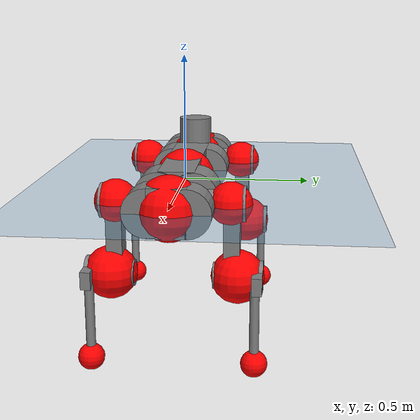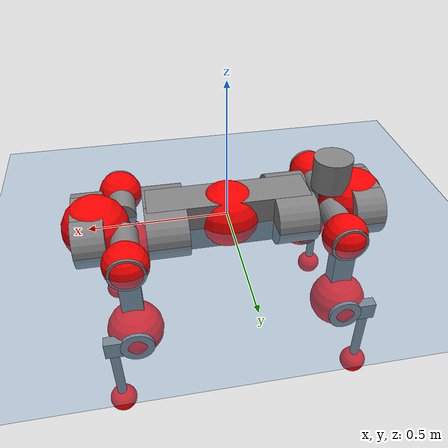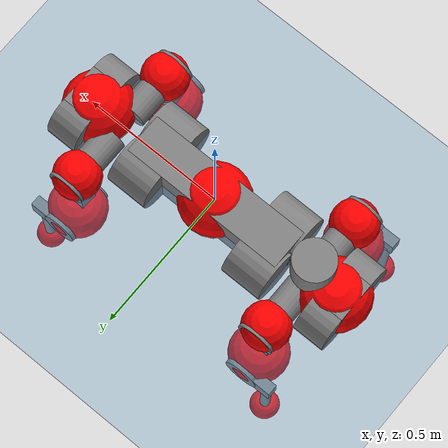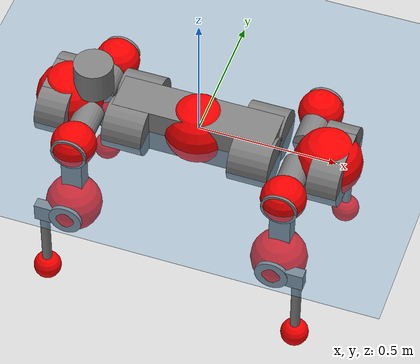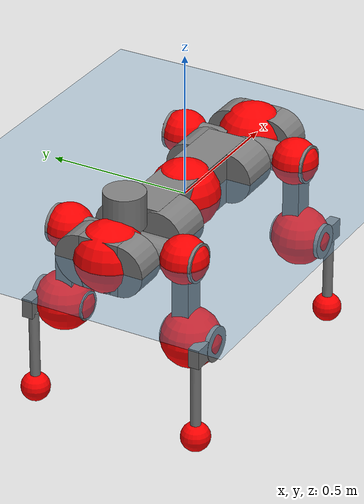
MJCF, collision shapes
<mujoco model="anymal_c">
  <compiler angle="radian" assetdir="assets" balanceinertia="true" inertiafromgeom="false"/>

  <option timestep="0.005" density="1.2" viscosity="2e-05"/>

  <size nkey="1"/>

  <visual>
    <quality shadowsize="8192"/>
    <map shadowclip="0.5"/>
  </visual>

  <default>
    <default class="/">
      <material specular="0" shininess="0.25"/>
      <geom contype="0" conaffinity="0" group="1" solref="-1000 -80"/>
      <site size="0.01 0.005 0.005" group="5"/>
      <general forcelimited="true" forcerange="-80 80" biastype="affine" gainprm="80" biasprm="0 -80 -2"/>
      <default class="anymal_c">
        <joint armature="0.01" damping="0.01" frictionloss="0.1"/>
        <default class="visual">
          <geom type="mesh" group="2"/>
          <default class="visual_zflip"/>
        </default>
        <default class="collision">
          <geom type="cylinder" group="3"/>
          <default class="foot">
            <geom size="0.03 0 0" type="sphere" condim="6" priority="1" friction="0.8 0.02 0.01" solimp="0.015 1 0.03"/>
          </default>
        </default>
      </default>
      <default class="reward_collision_sphere">
        <geom group="5" rgba="1 0 0 1"/>
      </default>
    </default>
  </default>

  <asset>
    <texture type="skybox" colorspace="auto" name="//unnamed_texture_0" builtin="gradient" rgb1="0.95 0.95 0.95" rgb2="0.95 0.95 0.95" width="100" height="600"/>
    <texture type="2d" colorspace="auto" name="texplane" builtin="checker" rgb1="0.345 0.575 0.748" rgb2="0.345 0.575 0.748" markrgb="1 1 1" width="512" height="512"/>
    <texture type="2d" colorspace="linear" name="base" file="base.png"/>
    <texture type="2d" colorspace="linear" name="top_shell" file="top_shell.png"/>
    <texture type="2d" colorspace="linear" name="bottom_shell" file="bottom_shell.png"/>
    <texture type="2d" colorspace="linear" name="remote" file="remote.png"/>
    <texture type="2d" colorspace="linear" name="hatch" file="hatch.png"/>
    <texture type="2d" colorspace="linear" name="handle" file="handle.png"/>
    <texture type="2d" colorspace="linear" name="face" file="face.png"/>
    <texture type="2d" colorspace="linear" name="battery" file="battery.png"/>
    <texture type="2d" colorspace="linear" name="lidar_cage" file="lidar_cage.png"/>
    <texture type="2d" colorspace="linear" name="depth_camera" file="depth_camera.png"/>
    <texture type="2d" colorspace="linear" name="wide_angle_camera" file="wide_angle_camera.png"/>
    <texture type="2d" colorspace="linear" name="lidar" file="lidar.png"/>
    <texture type="2d" colorspace="linear" name="drive" file="drive.png"/>
    <texture type="2d" colorspace="linear" name="hip_l" file="hip_l.png"/>
    <texture type="2d" colorspace="linear" name="shank_l" file="shank_l.png"/>
    <texture type="2d" colorspace="linear" name="foot" file="foot.png"/>
    <texture type="2d" colorspace="linear" name="thigh" file="thigh.png"/>
    <texture type="2d" colorspace="linear" name="shank_r" file="shank_r.png"/>
    <texture type="2d" colorspace="linear" name="hip_r" file="hip_r.png"/>
    <material name="MatPlane" class="/" texture="texplane" texuniform="true" texrepeat="2 2" specular="0.9" shininess="0.5"/>
    <material name="black_plastic" class="/" rgba="0.007 0.007 0.007 1"/>
    <material name="green" class="/" rgba="0.052 0.178 0.033 1"/>
    <material name="red" class="/" rgba="0.178 0.006 0.005 1"/>
    <material name="yellow" class="/" rgba="0.178 0.119 0.006 1"/>
    <material name="lwl" class="/" rgba="0.8 0.8 0.8 1"/>
    <material name="base" class="/" texture="base"/>
    <material name="top_shell" class="/" texture="top_shell"/>
    <material name="bottom_shell" class="/" texture="bottom_shell"/>
    <material name="hip_l" class="/" texture="hip_l"/>
    <material name="thigh" class="/" texture="thigh"/>
    <material name="shank_l" class="/" texture="shank_l"/>
    <material name="foot" class="/" texture="foot"/>
    <material name="hip_r" class="/" texture="hip_r"/>
    <material name="shank" class="/" texture="shank_r"/>
    <material name="hatch" class="/" texture="hatch"/>
    <material name="remote" class="/" texture="remote"/>
    <material name="handle" class="/" texture="handle"/>
    <material name="face" class="/" texture="face"/>
    <material name="depth_camera" class="/" texture="depth_camera"/>
    <material name="wide_angle_camera" class="/" texture="wide_angle_camera"/>
    <material name="battery" class="/" texture="battery"/>
    <material name="lidar_cage" class="/" texture="lidar_cage"/>
    <material name="lidar" class="/" texture="lidar"/>
    <material name="drive" class="/" texture="drive"/>
    <mesh name="base_0" class="/" file="base_0.obj"/>
    <mesh name="base_1" class="/" file="base_1.obj"/>
    <mesh name="base_2" class="/" file="base_2.obj"/>
    <mesh name="base_3" class="/" file="base_3.obj"/>
    <mesh name="base_4" class="/" file="base_4.obj"/>
    <mesh name="base_5" class="/" file="base_5.obj"/>
    <mesh name="top_shell" class="/" file="top_shell.obj"/>
    <mesh name="bottom_shell" class="/" file="bottom_shell.obj"/>
    <mesh name="remote" class="/" file="remote.obj"/>
    <mesh name="handle" class="/" file="handle.obj"/>
    <mesh name="face" class="/" file="face.obj"/>
    <mesh name="wide_angle_camera" class="/" file="wide_angle_camera.obj"/>
    <mesh name="depth_camera" class="/" file="depth_camera.obj"/>
    <mesh name="battery" class="/" file="battery.obj"/>
    <mesh name="lidar_cage" class="/" file="lidar_cage.obj"/>
    <mesh name="lidar" class="/" file="lidar.obj"/>
    <mesh name="drive" class="/" file="drive.obj"/>
    <mesh name="hip_l" class="/" file="hip_l.obj"/>
    <mesh name="thigh" class="/" file="thigh.obj"/>
    <mesh name="shank_l" class="/" file="shank_l.obj"/>
    <mesh name="foot" class="/" file="foot.obj"/>
    <mesh name="hip_r" class="/" file="hip_r.obj"/>
    <mesh name="hatch" class="/" file="hatch.obj"/>
    <mesh name="shank_r" class="/" file="shank_r.obj"/>
  </asset>

  <worldbody>
    <geom name="floor" class="/" size="100 100 0.125" type="plane" group="0" material="MatPlane"/>
    <light name="toplight_shadow" class="/" pos="0 0 5" dir="0.0990148 0.0990148 -0.990148" type="directional" ambient="0.04 0.04 0.04" diffuse="0.55 0.55 0.55" specular="0.12 0.12 0.12"/>
    <light name="toplight_fill" class="/" pos="0 0 5" dir="0.0990148 0.0990148 -0.990148" type="directional" castshadow="false" ambient="0.04 0.04 0.04" diffuse="0.3 0.3 0.3" specular="0.08 0.08 0.08"/>
    <body name="trunk" childclass="anymal_c" pos="-0.00219819 -0.000468103 0.00103017" quat="1 0.000161311 0.000594138 9.20861e-05">
      <inertial pos="8.34475e-05 -0.00056878 0.0477586" quat="0.497407 0.499794 0.498667 0.504106" mass="19.3645" diaginertia="0.843227 0.59256 0.199593"/>
      <joint name="//unnamed_joint_0" type="free" armature="0" damping="0" frictionloss="0"/>
      <geom name="//unnamed_geom_1" class="visual" material="green" mesh="base_0"/>
      <geom name="//unnamed_geom_2" class="visual" material="yellow" mesh="base_1"/>
      <geom name="//unnamed_geom_3" class="visual" material="red" mesh="base_2"/>
      <geom name="//unnamed_geom_4" class="visual" material="black_plastic" mesh="base_3"/>
      <geom name="//unnamed_geom_5" class="visual" material="lwl" mesh="base_4"/>
      <geom name="//unnamed_geom_6" class="visual" material="base" mesh="base_5"/>
      <geom name="trunk_1" class="collision" size="0.292321 0.0705602 0.0907203" type="box"/>
      <geom name="trunk_2" class="collision" size="0.0907203 0.0730802" pos="0.229516 0.0692398 0" quat="0.707107 0 0.707107 0"/>
      <geom name="trunk_3" class="collision" size="0.0907203 0.0730802" pos="-0.229516 0.0692398 0" quat="0.707107 0 0.707107 0"/>
      <geom name="trunk_4" class="collision" size="0.0907203 0.0730802" pos="0.229516 -0.0692398 0" quat="0.707107 0 0.707107 0"/>
      <geom name="trunk_5" class="collision" size="0.0907203 0.0730802" pos="-0.229516 -0.0692398 0" quat="0.707107 0 0.707107 0"/>
      <geom name="//unnamed_geom_12" class="visual" material="top_shell" mesh="top_shell"/>
      <geom name="//unnamed_geom_13" class="visual" material="bottom_shell" mesh="bottom_shell"/>
      <geom name="//unnamed_geom_14" class="visual" material="remote" mesh="remote"/>
      <geom name="//unnamed_geom_15" class="visual" material="handle" mesh="handle"/>
      <geom name="//unnamed_geom_16" class="visual" pos="0.437399 0 0" quat="1 0 0 0" material="face" mesh="face"/>
      <geom name="trunk_6" class="collision" size="0.0554402 0.0705602 0.0907203" pos="0.495438 0 0" type="box"/>
      <geom name="//unnamed_geom_18" class="collision" size="0.0907203 0.0554402" pos="0.495438 0.0692398 0" quat="0.707107 0 0.707107 0"/>
      <geom name="//unnamed_geom_19" class="collision" size="0.0907203 0.0554402" pos="0.495438 -0.0692398 0" quat="0.707107 0 0.707107 0"/>
      <geom name="//unnamed_geom_20" class="visual" pos="0.487151 0 -0.0280303" quat="0.965926 0 0.258819 0" material="depth_camera" mesh="depth_camera"/>
      <geom name="//unnamed_geom_21" class="visual" pos="0.541341 0 0.014665" material="wide_angle_camera" mesh="wide_angle_camera"/>
      <geom name="//unnamed_geom_22" class="visual_zflip" pos="-0.437399 0 0" quat="0 0 0 1" material="face" mesh="face"/>
      <geom name="trunk_7" class="collision" size="0.0554402 0.0705602 0.0907203" pos="-0.495438 0 0" quat="0 0 0 1" type="box"/>
      <geom name="//unnamed_geom_24" class="collision" size="0.0907203 0.0554402" pos="-0.495438 -0.0692398 0" quat="0 -0.707107 0 0.707107"/>
      <geom name="//unnamed_geom_25" class="collision" size="0.0907203 0.0554402" pos="-0.495438 0.0692398 0" quat="0 -0.707107 0 0.707107"/>
      <geom name="//unnamed_geom_26" class="visual" pos="-0.487151 0 -0.0280303" quat="0 -0.258819 0 0.965926" material="depth_camera" mesh="depth_camera"/>
      <geom name="//unnamed_geom_27" class="visual_zflip" pos="-0.541341 0 0.014665" quat="0 0 0 1" material="wide_angle_camera" mesh="wide_angle_camera"/>
      <geom name="//unnamed_geom_28" class="visual" material="battery" mesh="battery"/>
      <geom name="//unnamed_geom_29" class="visual" pos="0 0.0747591 0.0290328" quat="0.683013 -0.183013 0.183013 0.683013" material="depth_camera" mesh="depth_camera"/>
      <geom name="//unnamed_geom_30" class="visual" pos="0 -0.0747591 0.0290328" quat="0.683013 0.183013 0.183013 -0.683013" material="depth_camera" mesh="depth_camera"/>
      <geom name="//unnamed_geom_31" class="visual" pos="-0.384109 0 0.0720023" quat="1 0 0 0" material="lidar_cage" mesh="lidar_cage"/>
      <geom name="trunk_8" class="collision" size="0.0705602 0.0604802" pos="-0.384109 0 0.13078"/>
      <geom name="//unnamed_geom_33" class="visual" pos="-0.384109 -2.59708e-05 0.139302" quat="0.707107 0 0 -0.707107" material="lidar" mesh="lidar"/>
      <geom name="//unnamed_geom_34" class="visual" pos="0.316468 0.102867 1.64169e-10" quat="0.258819 0.965926 0 0" material="drive" mesh="drive"/>
      <geom name="//unnamed_geom_35" class="visual" pos="0.316468 -0.102867 -1.64169e-10" quat="0.258819 -0.965926 0 0" material="drive" mesh="drive"/>
      <geom name="//unnamed_geom_36" class="visual" pos="-0.316468 0.102867 -1.64169e-10" quat="0 0 0.965926 -0.258819" material="drive" mesh="drive"/>
      <geom name="//unnamed_geom_37" class="visual" pos="-0.316468 -0.102867 1.64169e-10" quat="0 0 -0.965926 -0.258819" material="drive" mesh="drive"/>
      <geom name="//unnamed_geom_38" class="visual" pos="0.122408 0 0.0715125" quat="1 0 0 0" material="hatch" mesh="hatch"/>
      <geom name="//unnamed_geom_39" class="reward_collision_sphere" size="0.12096"/>
      <geom name="//unnamed_geom_40" class="reward_collision_sphere" size="0.12096" pos="0.47486 0 0"/>
      <geom name="//unnamed_geom_41" class="reward_collision_sphere" size="0.12096" pos="-0.47486 0 0"/>
      <site name="imu" pos="0.261675 0.00309547 0.049103" size="0.01008"/>
      <camera name="track" pos="0 -1.97828 0" quat="0.707107 0.707107 0 0" mode="trackcom"/>
      <camera name="ego_camera" pos="0.47486 0 -0.0391849" quat="-0.5 -0.5 0.5 0.5"/>
      <body name="LF_HIP" pos="0.317616 0.103577 -0.00103356" quat="0.258012 0.966142 0.000305991 -0.000588727">
        <inertial pos="0.0574828 -0.0141738 -0.00744052" quat="-0.12854 0.709898 -0.134054 0.679376" mass="2.89199" diaginertia="0.00780413 0.00463362 0.00301135"/>
        <joint name="LF_HAA" pos="0 0 0" axis="1 0.000113574 -4.40596e-05" range="-0.726731 0.456577" armature="0.0105654" damping="0.00893127" frictionloss="0.0957994"/>
        <geom name="//unnamed_geom_42" class="visual" pos="0 9.65734e-06 -1.58621e-06" quat="0.258819 -0.965926 0 0" material="hip_l" mesh="hip_l"/>
        <geom name="//unnamed_geom_43" class="visual" pos="0.0632092 -0.0757176 -0.0436452" quat="0.183013 -0.683013 0.683013 0.183013" material="drive" mesh="drive"/>
        <geom name="//unnamed_geom_44" class="collision" size="0.0504001 0.0705602" pos="0.0632092 -0.0118299 -0.0067643" quat="-0.353553 -0.612372 0.612372 -0.353553"/>
        <body name="LF_THIGH" pos="0.0634478 -0.072748 -0.04159" quat="0.182865 -0.683001 0.683049 0.183069">
          <inertial pos="0.0349386 0.000202729 -0.238789" quat="0.993031 -0.00439084 -0.0802161 0.0862242" mass="3.16854" diaginertia="0.0392999 0.0280432 0.00382301"/>
          <joint name="LF_HFE" pos="0 0 0" axis="0.999998 -0.00046499 -0.00216485" stiffness="0.013284" range="-3.17117 3.15545" armature="0.0104924" damping="0" frictionloss="0.097111"/>
          <geom name="//unnamed_geom_45" class="visual" pos="0.00131523 2.07249e-06 0" quat="0.707107 0 0 -0.707107" material="thigh" mesh="thigh"/>
          <geom name="//unnamed_geom_46" class="collision" size="0.0655202 0.0403201" pos="0.0422098 0 0" quat="0.5 0.5 -0.5 -0.5"/>
          <geom name="//unnamed_geom_47" class="collision" size="0.0378001 0.0302401 0.142445" pos="0.0316574 0 -0.138434" quat="0.707107 0 0 -0.707107" type="box"/>
          <geom name="//unnamed_geom_48" class="visual" pos="0.105841 0 -0.279193" quat="1 0 0 0" material="drive" mesh="drive"/>
          <geom name="//unnamed_geom_49" class="collision" size="0.0504001 0.0705602" pos="0.0319739 0 -0.279193" quat="0.707107 0 0.707107 0"/>
          <geom name="//unnamed_geom_50" class="reward_collision_sphere" size="0.0806402" pos="0.0263811 0 0"/>
          <body name="LF_SHANK" pos="0.105954 -0.00021152 -0.27994" quat="1 2.98182e-06 1.80347e-06 3.78124e-06">
            <inertial pos="0.00552874 -0.0611289 -0.0798652" quat="0.992855 -0.11765 0.00478529 -0.0193597" mass="0.595898" diaginertia="0.0134452 0.00866201 0.00100593"/>
            <joint name="LF_KFE" pos="0 0 0" axis="0.999981 -0.00590049 0.0018318" range="-3.15076 3.11002" armature="0.0103726" damping="0.00908839" frictionloss="0.0988734"/>
            <geom name="//unnamed_geom_51" class="visual" pos="0.000428867 0.00228674 0" quat="0.707107 0 0 -0.707107" material="shank_l" mesh="shank_l"/>
            <geom name="LF_kfe_act" class="collision" size="0.0604802 0.0201601" pos="0.0211049 0 0" quat="0.5 0.5 -0.5 -0.5"/>
            <geom name="//unnamed_geom_53" class="collision" size="0.0579592 0.0340201 0.0191521" pos="0.0211049 -0.0568746 0" quat="0.5 0.5 -0.5 -0.5" type="box"/>
            <geom name="//unnamed_geom_54" class="visual" pos="0.0137708 -0.086258 -0.331083" quat="0.382683 0 0 -0.92388" material="foot" mesh="foot"/>
            <geom name="LF_calf" class="collision" size="0.01764 0.142382" pos="0.0137709 -0.0869949 -0.165542" quat="0.707107 0 0 -0.707107"/>
            <geom name="LF_foot" class="foot" size="0.0298459" pos="0.0137709 -0.0869949 -0.309042" quat="0.707107 0 0 -0.707107"/>
            <geom name="//unnamed_geom_57" class="reward_collision_sphere" size="0.1008" pos="-0.0527623 0 0"/>
            <geom name="//unnamed_geom_58" class="reward_collision_sphere" size="0.0504001" pos="0.0137709 -0.0869949 -0.309042"/>
            <site name="LF_foot" class="foot" pos="0.0137709 -0.0869949 -0.309042" quat="0.707107 0 0 -0.707107" size="0.01008"/>
          </body>
        </body>
      </body>
      <body name="RF_HIP" pos="0.316712 -0.10169 0.00130781" quat="0.258824 -0.965924 8.4556e-05 0.000519245">
        <inertial pos="0.0611016 0.0145432 -0.00826364" quat="0.134705 0.679515 0.128114 0.709719" mass="2.95281" diaginertia="0.00768217 0.00470268 0.00298381"/>
        <joint name="RF_HAA" pos="0 0 0" axis="0.999997 0.00207431 -0.00150784" range="-0.501053 0.715391" armature="0.00890171" damping="0.00935728" frictionloss="0.112117"/>
        <geom name="//unnamed_geom_59" class="visual" pos="0 -9.65726e-06 -1.58621e-06" quat="0.258819 0.965926 0 0" material="hip_r" mesh="hip_r"/>
        <geom name="//unnamed_geom_60" class="visual" pos="0.0632092 0.0757176 -0.0436452" quat="0.183013 0.683013 0.683013 -0.183013" material="drive" mesh="drive"/>
        <geom name="//unnamed_geom_61" class="collision" size="0.0504001 0.0705602" pos="0.0632092 0.0118299 -0.0067643" quat="-0.353553 0.612372 0.612372 0.353553"/>
        <body name="RF_THIGH" pos="0.0637928 0.0716302 -0.0400358" quat="0.183138 0.68357 0.682345 -0.183297">
          <inertial pos="0.0320235 -0.00245005 -0.239547" quat="0.992709 -0.00417937 -0.0799148 0.0901348" mass="3.08958" diaginertia="0.0400061 0.0290098 0.0037666"/>
          <joint name="RF_HFE" pos="0 0 0" axis="0.999986 0.00273719 0.00450202" stiffness="0.00340399" range="-3.12332 3.15877" armature="0.0101798" damping="0.0108015" frictionloss="0.0958859"/>
          <geom name="//unnamed_geom_62" class="visual" pos="0.00131523 2.07249e-06 0" quat="0.707107 0 0 -0.707107" material="thigh" mesh="thigh"/>
          <geom name="//unnamed_geom_63" class="collision" size="0.0655202 0.0403201" pos="0.0422098 0 0" quat="0.5 0.5 0.5 0.5"/>
          <geom name="//unnamed_geom_64" class="collision" size="0.0378001 0.0302401 0.142445" pos="0.0316574 0 -0.138434" quat="0.707107 0 0 0.707107" type="box"/>
          <geom name="//unnamed_geom_65" class="visual" pos="0.105841 0 -0.279193" quat="1 0 0 0" material="drive" mesh="drive"/>
          <geom name="//unnamed_geom_66" class="collision" size="0.0504001 0.0705602" pos="0.0319739 0 -0.279193" quat="0.707107 0 0.707107 0"/>
          <geom name="//unnamed_geom_67" class="reward_collision_sphere" size="0.0806402" pos="0.0263811 0 0"/>
          <body name="RF_SHANK" pos="0.105367 -2.72329e-05 -0.278404" quat="1 8.36872e-05 0.000111207 5.98489e-05">
            <inertial pos="0.00541782 0.0606487 -0.0781095" quat="0.992786 0.117279 -0.0020689 0.0248323" mass="0.607263" diaginertia="0.0137808 0.00882415 0.00102839"/>
            <joint name="RF_KFE" pos="0 0 0" axis="0.999947 -0.00152199 -0.0101627" range="-3.14413 3.12671" armature="0.0102987" damping="0.0060098" frictionloss="0.0976794"/>
            <geom name="//unnamed_geom_68" class="visual" pos="0.000428865 -0.00228674 0" quat="0.707107 0 0 0.707107" material="shank" mesh="shank_r"/>
            <geom name="RF_kfe_act" class="collision" size="0.0604802 0.0201601" pos="0.0211049 0 0" quat="0.5 0.5 0.5 0.5"/>
            <geom name="//unnamed_geom_70" class="collision" size="0.0579592 0.0340201 0.0191521" pos="0.0211049 0.0568746 0" quat="0.5 0.5 0.5 0.5" type="box"/>
            <geom name="//unnamed_geom_71" class="visual" pos="0.0137711 0.086258 -0.331083" quat="0.382683 0 0 0.92388" material="foot" mesh="foot"/>
            <geom name="RF_calf" class="collision" size="0.01764 0.142382" pos="0.0137709 0.0869949 -0.165542" quat="0.707107 0 0 0.707107"/>
            <geom name="RF_foot" class="foot" size="0.0301498" pos="0.0137709 0.0869949 -0.309042" quat="0.707107 0 0 0.707107"/>
            <geom name="//unnamed_geom_74" class="reward_collision_sphere" size="0.1008" pos="-0.0527623 0 0"/>
            <geom name="//unnamed_geom_75" class="reward_collision_sphere" size="0.0504001" pos="0.0137709 0.0869949 -0.309042"/>
            <site name="RF_foot" class="foot" pos="0.0137709 0.0869949 -0.309042" quat="0.707107 0 0 0.707107" size="0.01008"/>
          </body>
        </body>
      </body>
      <body name="LH_HIP" pos="-0.31625 0.102099 0.000497395" quat="0.000167308 -1.28479e-05 0.966253 -0.257593">
        <inertial pos="0.0621652 0.0153514 -0.00764628" quat="0.135171 0.679373 0.127938 0.709798" mass="2.84051" diaginertia="0.00767584 0.00471144 0.00300037"/>
        <joint name="LH_HAA" pos="0 0 0" axis="0.999999 0.000525175 0.000854555" range="-0.491057 0.729232" armature="0.0100519" damping="0.00841486" frictionloss="0.095641"/>
        <geom name="//unnamed_geom_76" class="visual" pos="0 -9.65726e-06 -1.58621e-06" quat="-0.258819 -0.965926 0 0" material="hip_r" mesh="hip_r"/>
        <geom name="//unnamed_geom_77" class="visual" pos="0.0632092 0.0757176 -0.0436452" quat="0.183013 0.683013 0.683013 -0.183013" material="drive" mesh="drive"/>
        <geom name="//unnamed_geom_78" class="collision" size="0.0504001 0.0705602" pos="0.0632092 0.0118299 -0.0067643" quat="-0.353553 0.612372 0.612372 0.353553"/>
        <body name="LH_THIGH" pos="0.060355 0.0708324 -0.040773" quat="0.182492 0.683005 0.682992 -0.183637">
          <inertial pos="0.0328941 -0.000108551 -0.240609" quat="0.993164 0.00238607 -0.0799684 0.0849947" mass="3.08686" diaginertia="0.0391609 0.0279196 0.00372681"/>
          <joint name="LH_HFE" pos="0 0 0" axis="0.999993 -0.00266647 -0.0026864" range="-3.14666 3.14687" armature="0.00996138" damping="0" frictionloss="0.105976"/>
          <geom name="//unnamed_geom_79" class="visual" pos="0.00131523 2.07249e-06 0" quat="0.707107 0 0 -0.707107" material="thigh" mesh="thigh"/>
          <geom name="//unnamed_geom_80" class="collision" size="0.0655202 0.0403201" pos="0.0422098 0 0" quat="0.5 0.5 -0.5 -0.5"/>
          <geom name="//unnamed_geom_81" class="collision" size="0.0378001 0.0302401 0.142445" pos="0.0316574 0 -0.138434" quat="0.707107 0 0 -0.707107" type="box"/>
          <geom name="//unnamed_geom_82" class="visual" pos="0.105841 0 -0.279193" quat="1 0 0 0" material="drive" mesh="drive"/>
          <geom name="//unnamed_geom_83" class="collision" size="0.0504001 0.0705602" pos="0.0319739 0 -0.279193" quat="0.707107 0 0.707107 0"/>
          <geom name="//unnamed_geom_84" class="reward_collision_sphere" size="0.0806402" pos="0.0263811 0 0"/>
          <body name="LH_SHANK" pos="0.104508 -0.000424684 -0.279936" quat="1 -9.70689e-05 0.000119851 4.34167e-05">
            <inertial pos="0.00585843 0.0605516 -0.0793702" quat="0.992932 0.115877 -0.000864626 0.0256401" mass="0.604265" diaginertia="0.0132596 0.00873235 0.00100449"/>
            <joint name="LH_KFE" pos="0 0 0" axis="0.999978 0.00106517 -0.00655253" range="-3.12784 3.1402" armature="0.0104772" damping="0" frictionloss="0.101909"/>
            <geom name="//unnamed_geom_85" class="visual" pos="0.000428865 -0.00228674 0" quat="-0.707107 0 0 -0.707107" material="shank" mesh="shank_r"/>
            <geom name="LH_kfe_act" class="collision" size="0.0604802 0.0201601" pos="0.0211049 0 0" quat="0.5 0.5 -0.5 -0.5"/>
            <geom name="//unnamed_geom_87" class="collision" size="0.0579592 0.0340201 0.0191521" pos="0.0211049 0.0568746 0" quat="0.5 0.5 -0.5 -0.5" type="box"/>
            <geom name="//unnamed_geom_88" class="visual" pos="0.0137711 0.086258 -0.331083" quat="-0.382683 0 0 -0.92388" material="foot" mesh="foot"/>
            <geom name="LH_calf" class="collision" size="0.01764 0.142382" pos="0.0137709 0.0869949 -0.165542" quat="0.707107 0 0 -0.707107"/>
            <geom name="LH_foot" class="foot" size="0.0317554" pos="0.0137709 0.0869949 -0.309042" quat="0.707107 0 0 -0.707107"/>
            <geom name="//unnamed_geom_91" class="reward_collision_sphere" size="0.1008" pos="-0.0527623 0 0"/>
            <geom name="//unnamed_geom_92" class="reward_collision_sphere" size="0.0504001" pos="0.0137709 0.0869949 -0.309042"/>
            <site name="LH_foot" class="foot" pos="0.0137709 0.0869949 -0.309042" quat="0.707107 0 0 -0.707107" size="0.01008"/>
          </body>
        </body>
      </body>
      <body name="RH_HIP" pos="-0.317031 -0.105139 0.0014649" quat="0.000179653 0.000144247 -0.965952 -0.258723">
        <inertial pos="0.059878 -0.014146 -0.0084068" quat="-0.122969 0.713404 -0.141185 0.675278" mass="2.86311" diaginertia="0.00766309 0.00467547 0.00301835"/>
        <joint name="RH_HAA" pos="0 0 0" axis="1 0.000149964 -3.07591e-05" stiffness="0.0026061" range="-0.71912 0.485675" armature="0.0112395" damping="0.022507" frictionloss="0.0925817"/>
        <geom name="//unnamed_geom_93" class="visual" pos="0 9.65734e-06 -1.58621e-06" quat="-0.258819 0.965926 0 0" material="hip_l" mesh="hip_l"/>
        <geom name="//unnamed_geom_94" class="visual" pos="0.0632092 -0.0757176 -0.0436452" quat="-0.183013 0.683013 -0.683013 -0.183013" material="drive" mesh="drive"/>
        <geom name="//unnamed_geom_95" class="collision" size="0.0504001 0.0705602" pos="0.0632092 -0.0118299 -0.0067643" quat="0.353553 0.612372 -0.612372 0.353553"/>
        <body name="RH_THIGH" pos="0.0637974 -0.0719668 -0.0426758" quat="-0.182773 0.683034 -0.682933 -0.183469">
          <inertial pos="0.0329153 0.00060131 -0.24011" quat="0.993191 -0.00478464 -0.0806069 0.0839702" mass="3.21729" diaginertia="0.040593 0.0286837 0.00373369"/>
          <joint name="RH_HFE" pos="0 0 0" axis="0.999989 -0.00432471 -0.00158074" range="-3.17852 3.14427" armature="0.00980592" damping="0.00963492" frictionloss="0.104366"/>
          <geom name="//unnamed_geom_96" class="visual" pos="0.00131523 2.07249e-06 0" quat="0.707107 0 0 -0.707107" material="thigh" mesh="thigh"/>
          <geom name="//unnamed_geom_97" class="collision" size="0.0655202 0.0403201" pos="0.0422098 0 0" quat="0.5 0.5 0.5 0.5"/>
          <geom name="//unnamed_geom_98" class="collision" size="0.0378001 0.0302401 0.142445" pos="0.0316574 0 -0.138434" quat="0.707107 0 0 0.707107" type="box"/>
          <geom name="//unnamed_geom_99" class="visual" pos="0.105841 0 -0.279193" quat="1 0 0 0" material="drive" mesh="drive"/>
          <geom name="//unnamed_geom_100" class="collision" size="0.0504001 0.0705602" pos="0.0319739 0 -0.279193" quat="0.707107 0 0.707107 0"/>
          <geom name="//unnamed_geom_101" class="reward_collision_sphere" size="0.0806402" pos="0.0263811 0 0"/>
          <body name="RH_SHANK" pos="0.102991 0.00103768 -0.279309" quat="1 -3.85685e-05 -0.000112121 5.21689e-05">
            <inertial pos="0.00829783 -0.0604636 -0.0795179" quat="0.992509 -0.119949 0.00116281 -0.0231884" mass="0.602882" diaginertia="0.0128415 0.00842866 0.000983856"/>
            <joint name="RH_KFE" pos="0 0 0" axis="0.999997 -0.00129673 0.00195222" stiffness="0.000543006" range="-3.1062 3.18481" armature="0.00951352" damping="0.0087561" frictionloss="0.0968931"/>
            <geom name="//unnamed_geom_102" class="visual" pos="0.000428867 0.00228674 0" quat="0.707107 0 0 -0.707107" material="shank_l" mesh="shank_l"/>
            <geom name="RH_kfe_act" class="collision" size="0.0604802 0.0201601" pos="0.0211049 0 0" quat="0.5 0.5 0.5 0.5"/>
            <geom name="//unnamed_geom_104" class="collision" size="0.0579592 0.0340201 0.0191521" pos="0.0211049 -0.0568746 0" quat="0.5 0.5 0.5 0.5" type="box"/>
            <geom name="//unnamed_geom_105" class="visual" pos="0.0137708 -0.086258 -0.331083" quat="0.382683 0 0 -0.92388" material="foot" mesh="foot"/>
            <geom name="RH_calf" class="collision" size="0.01764 0.142382" pos="0.0137709 -0.0869949 -0.165542" quat="0.707107 0 0 0.707107"/>
            <geom name="RH_foot" class="foot" size="0.029931" pos="0.0137709 -0.0869949 -0.309042" quat="0.707107 0 0 0.707107"/>
            <geom name="//unnamed_geom_108" class="reward_collision_sphere" size="0.1008" pos="-0.0527623 0 0"/>
            <geom name="//unnamed_geom_109" class="reward_collision_sphere" size="0.0504001" pos="0.0137709 -0.0869949 -0.309042"/>
            <site name="RH_foot" class="foot" pos="0.0137709 -0.0869949 -0.309042" quat="0.707107 0 0 0.707107" size="0.01008"/>
          </body>
        </body>
      </body>
    </body>
  </worldbody>

  <contact>
    <pair class="/" geom1="floor" geom2="LF_foot" name="//unnamed_contact_0"/>
    <pair class="/" geom1="floor" geom2="RF_foot" name="//unnamed_contact_1"/>
    <pair class="/" geom1="floor" geom2="LH_foot" name="//unnamed_contact_2"/>
    <pair class="/" geom1="floor" geom2="RH_foot" name="//unnamed_contact_3"/>
  </contact>

  <actuator>
    <general name="LF_HAA" class="/" joint="LF_HAA" forcerange="-81.8873 81.8873" gainprm="81.3506" biasprm="0 -81.3506 -1.89305"/>
    <general name="LF_HFE" class="/" joint="LF_HFE" forcerange="-82.9052 82.9052" gainprm="81.3506" biasprm="0 -81.3506 -1.89305"/>
    <general name="LF_KFE" class="/" joint="LF_KFE" forcerange="-81.0196 81.0196" gainprm="81.3506" biasprm="0 -81.3506 -1.89305"/>
    <general name="RF_HAA" class="/" joint="RF_HAA" forcerange="-88.6998 88.6998" gainprm="81.3506" biasprm="0 -81.3506 -1.89305"/>
    <general name="RF_HFE" class="/" joint="RF_HFE" forcerange="-82.4608 82.4608" gainprm="81.3506" biasprm="0 -81.3506 -1.89305"/>
    <general name="RF_KFE" class="/" joint="RF_KFE" forcerange="-78.6245 78.6245" gainprm="81.3506" biasprm="0 -81.3506 -1.89305"/>
    <general name="LH_HAA" class="/" joint="LH_HAA" forcerange="-79.9057 79.9057" gainprm="81.3506" biasprm="0 -81.3506 -1.89305"/>
    <general name="LH_HFE" class="/" joint="LH_HFE" forcerange="-79.6278 79.6278" gainprm="81.3506" biasprm="0 -81.3506 -1.89305"/>
    <general name="LH_KFE" class="/" joint="LH_KFE" forcerange="-83.2163 83.2163" gainprm="81.3506" biasprm="0 -81.3506 -1.89305"/>
    <general name="RH_HAA" class="/" joint="RH_HAA" forcerange="-81.9078 81.9078" gainprm="81.3506" biasprm="0 -81.3506 -1.89305"/>
    <general name="RH_HFE" class="/" joint="RH_HFE" forcerange="-83.4118 83.4118" gainprm="81.3506" biasprm="0 -81.3506 -1.89305"/>
    <general name="RH_KFE" class="/" joint="RH_KFE" forcerange="-86.7002 86.7002" gainprm="81.3506" biasprm="0 -81.3506 -1.89305"/>
  </actuator>

  <sensor>
    <gyro site="imu" name="imu_angular_velocity"/>
    <velocimeter site="imu" name="imu_linear_velocity"/>
    <framelinvel objtype="site" objname="LF_foot" name="LF_foot_global_linear_velocity"/>
    <framelinvel objtype="site" objname="RF_foot" name="RF_foot_global_linear_velocity"/>
    <framelinvel objtype="site" objname="LH_foot" name="LH_foot_global_linear_velocity"/>
    <framelinvel objtype="site" objname="RH_foot" name="RH_foot_global_linear_velocity"/>
  </sensor>

  <keyframe>
    <key name="home" qpos="0 0 0.55 1 0 0 0 0 0.4 -0.8 0 -0.4 0.8 0 -0.4 0.8 0 0.4 -0.8"/>
  </keyframe>
</mujoco>
